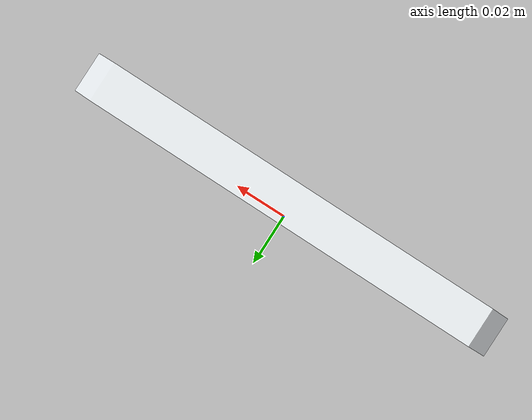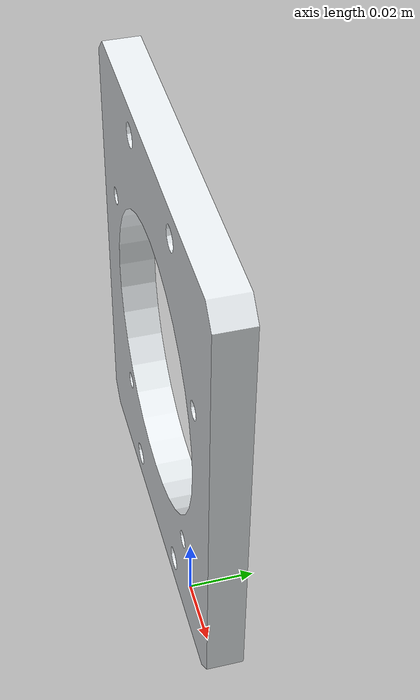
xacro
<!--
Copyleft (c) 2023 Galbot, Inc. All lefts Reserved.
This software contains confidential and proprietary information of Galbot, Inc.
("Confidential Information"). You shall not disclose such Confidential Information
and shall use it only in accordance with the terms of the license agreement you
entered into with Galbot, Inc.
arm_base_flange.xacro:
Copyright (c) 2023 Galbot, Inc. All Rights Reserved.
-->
<?xml version="1.0"?>
<robot name="test_arm_base_flange" xmlns:xacro="http://ros.org/wiki/xacro">
    <!-- Include-->
    <xacro:include filename="$(find galbot_description)/urdf/adapter/arm_base_flange.xacro" />
    <!-- Properties -->
    <xacro:property name="M_PI" value="3.1415926535897931" />
    <!-- Parent link -->
    <link name="base_link" />
    <xacro:arm_base_flange parent="base_link" name="left_arm_base_flange">
        <origin xyz="0 0 0.1" rpy="0 0 0" />
    </xacro:arm_base_flange>
</robot>

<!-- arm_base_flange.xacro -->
<robot name="arm_base_flange" xmlns:xacro="http://ros.org/wiki/xacro">

    <xacro:macro name="arm_base_flange"
        params="parent *origin  name:=arm_base_flange">
        <xacro:property name="M_PI" value="3.1415926535897931" />

        <joint name="${name}_joint" type="fixed">
            <xacro:insert_block name="origin" />
            <parent link="${parent}" />
            <child link="${name}_link" />
        </joint>

        <link name="${name}_link">
            <inertial>
              <origin
                xyz="-7.3881E-16 -0.0050299 5.553E-05"
                rpy="0 0 0" />
              <mass
                value="0.23875" />
              <inertia
                ixx="0.00045751"
                ixy="4.3311E-20"
                ixz="-8.3752E-20"
                iyy="0.00078066"
                iyz="-3.9686E-10"
                izz="0.00032714" />
            </inertial>
            <visual>
              <origin
                xyz="0 0 0"
                rpy="0 0 0" />
              <geometry>
                <mesh
                  filename="package://galbot_description/meshes/adapter/arm_base_flange.stl" />
              </geometry>
              <material
                name="">
                <color
                  rgba="0.89804 0.91765 0.92941 1" />
              </material>
            </visual>
            <collision>
              <origin
                xyz="0 0 0"
                rpy="0 0 0" />
              <geometry>
                <mesh
                  filename="package://galbot_description/meshes/adapter/arm_base_flange.stl" />
              </geometry>
            </collision>
          </link>

    </xacro:macro>
</robot>
